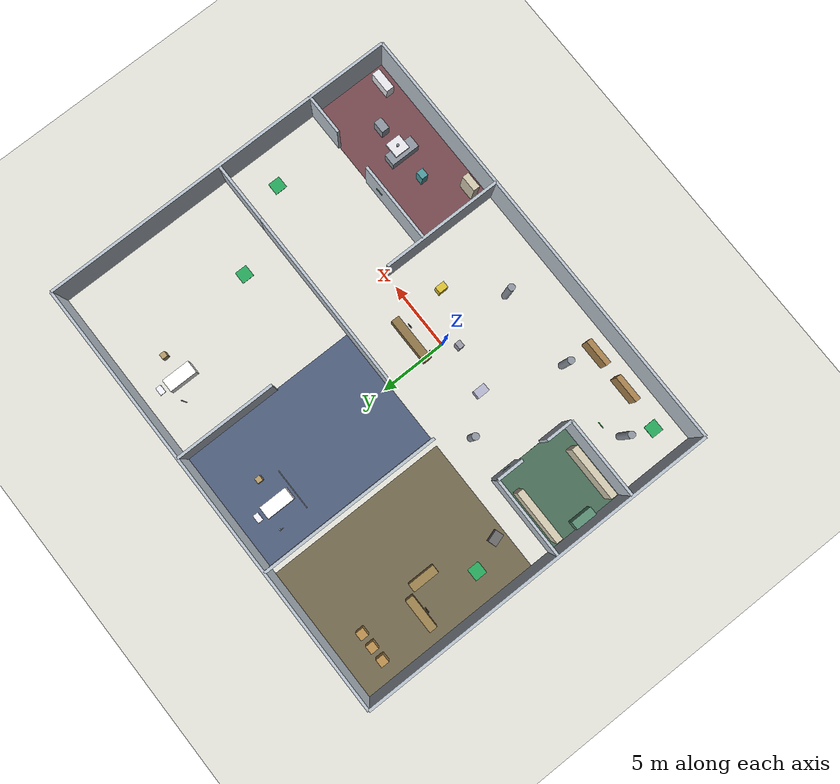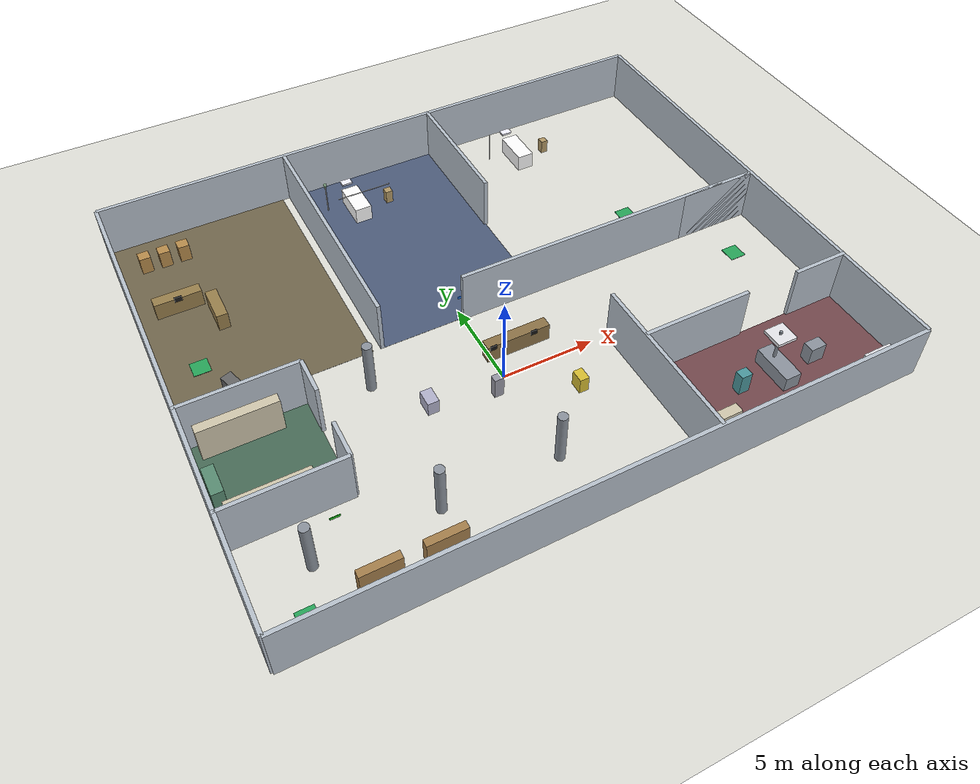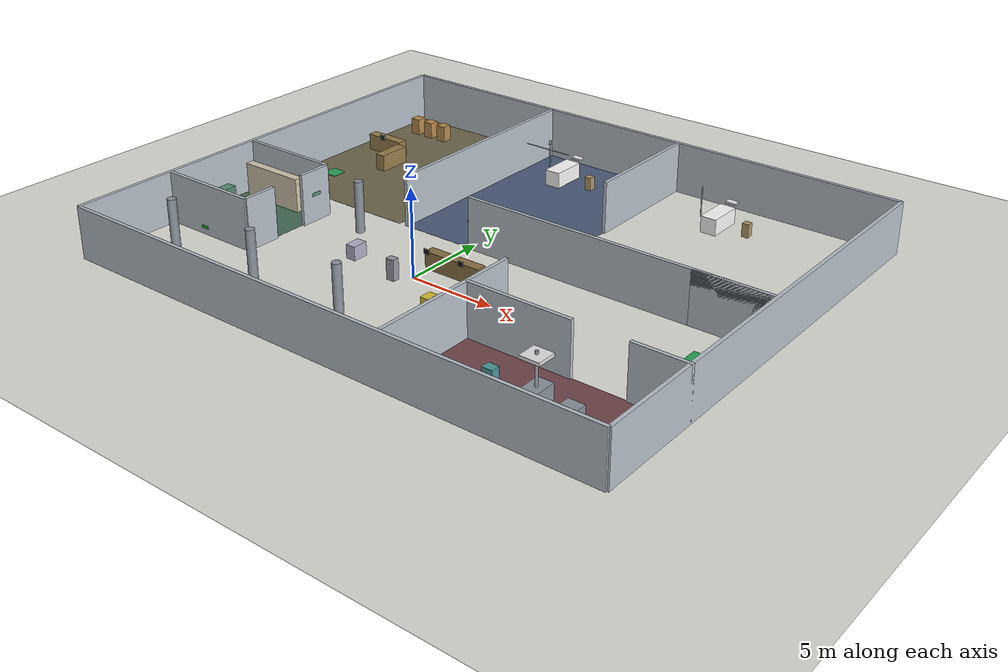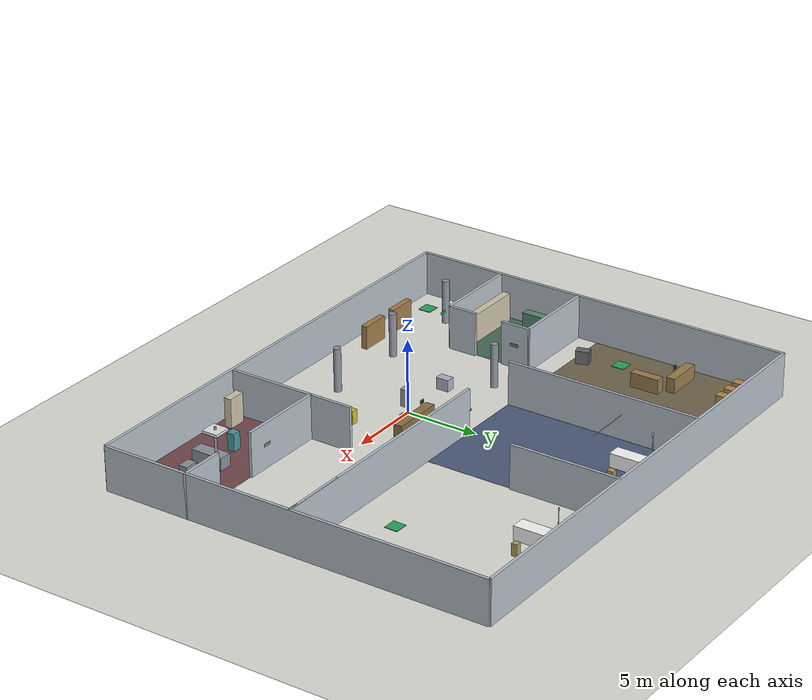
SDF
<?xml version="1.0" ?>
<sdf version="1.6">
  <world name="hospital">

    <!-- ===== PHYSICS ===== -->
    <physics name="default_physics" default="true" type="ode">
      <max_step_size>0.001</max_step_size>
      <real_time_factor>1.0</real_time_factor>
      <real_time_update_rate>1000</real_time_update_rate>
    </physics>

    <!-- ===== LIGHTING (Hospital Cool White 6000K) ===== -->
    <light name="main_light_1" type="directional">
      <pose>0 0 8 0 0 0</pose>
      <diffuse>0.95 0.97 1.0 1</diffuse>
      <specular>0.1 0.1 0.1 1</specular>
      <direction>0.0 0.0 -1.0</direction>
      <cast_shadows>false</cast_shadows>
    </light>

    <light name="corridor_light_1" type="point">
      <pose>0 0 3.8 0 0 0</pose>
      <diffuse>0.95 0.97 1.0 1</diffuse>
      <specular>0.05 0.05 0.05 1</specular>
      <attenuation><range>15</range><linear>0.1</linear><constant>0.5</constant></attenuation>
      <cast_shadows>false</cast_shadows>
    </light>

    <light name="corridor_light_2" type="point">
      <pose>12 0 3.8 0 0 0</pose>
      <diffuse>0.95 0.97 1.0 1</diffuse>
      <specular>0.05 0.05 0.05 1</specular>
      <attenuation><range>15</range><linear>0.1</linear><constant>0.5</constant></attenuation>
      <cast_shadows>false</cast_shadows>
    </light>

    <light name="reception_light" type="point">
      <pose>-12 6 3.8 0 0 0</pose>
      <diffuse>0.95 0.97 1.0 1</diffuse>
      <specular>0.05 0.05 0.05 1</specular>
      <attenuation><range>12</range><linear>0.1</linear><constant>0.5</constant></attenuation>
      <cast_shadows>false</cast_shadows>
    </light>

    <!-- ===== GROUND (Linoleum Floor) ===== -->
    <model name="ground_plane">
      <static>true</static>
      <link name="link">
        <collision name="col">
          <geometry><plane><normal>0 0 1</normal><size>70 70</size></plane></geometry>
          <surface>
            <friction>
              <ode><mu>0.8</mu><mu2>0.8</mu2></ode>
            </friction>
          </surface>
        </collision>
        <visual name="vis">
          <geometry><plane><normal>0 0 1</normal><size>70 70</size></plane></geometry>
          <material>
            <ambient>0.88 0.88 0.85 1</ambient>
            <diffuse>0.88 0.88 0.85 1</diffuse>
            <specular>0.05 0.05 0.05 1</specular>
          </material>
        </visual>
      </link>
    </model>

    <!-- ===== OUTER BOUNDARY WALLS ===== -->

    <!-- North wall (top) -->
    <model name="wall_north">
      <static>true</static><pose>1.5 18 1.5 0 0 0</pose>
      <link name="link">
        <collision name="col"><geometry><box><size>33 0.2 3</size></box></geometry></collision>
        <visual name="vis"><geometry><box><size>33 0.2 3</size></box></geometry>
          <material><ambient>0.72 0.76 0.80 1</ambient><diffuse>0.72 0.76 0.80 1</diffuse><specular>0.05 0.05 0.05 1</specular></material>
        </visual>
      </link>
    </model>

    <!-- South wall -->
    <model name="wall_south">
      <static>true</static><pose>1.5 -9 1.5 0 0 0</pose>
      <link name="link">
        <collision name="col"><geometry><box><size>33 0.2 3</size></box></geometry></collision>
        <visual name="vis"><geometry><box><size>33 0.2 3</size></box></geometry>
          <material><ambient>0.72 0.76 0.80 1</ambient><diffuse>0.72 0.76 0.80 1</diffuse><specular>0.05 0.05 0.05 1</specular></material>
        </visual>
      </link>
    </model>

    <!-- West wall -->
    <model name="wall_west">
      <static>true</static><pose>-15 4.5 1.5 0 0 0</pose>
      <link name="link">
        <collision name="col"><geometry><box><size>0.2 27 3</size></box></geometry></collision>
        <visual name="vis"><geometry><box><size>0.2 27 3</size></box></geometry>
          <material><ambient>0.72 0.76 0.80 1</ambient><diffuse>0.72 0.76 0.80 1</diffuse><specular>0.05 0.05 0.05 1</specular></material>
        </visual>
      </link>
    </model>

    <!-- East wall -->
    <model name="wall_east">
      <static>true</static><pose>18 4.5 1.5 0 0 0</pose>
      <link name="link">
        <collision name="col"><geometry><box><size>0.2 27 3</size></box></geometry></collision>
        <visual name="vis"><geometry><box><size>0.2 27 3</size></box></geometry>
          <material><ambient>0.72 0.76 0.80 1</ambient><diffuse>0.72 0.76 0.80 1</diffuse><specular>0.05 0.05 0.05 1</specular></material>
        </visual>
      </link>
    </model>

    <!-- ===== MAIN CORRIDOR WALLS (East-West, y=0 center, width=3m) ===== -->

    <!-- Corridor north wall segment east -->
    <model name="corridor_north_east">
      <static>true</static><pose>9 4.5 1.5 0 0 0</pose>
      <link name="link">
        <collision name="col"><geometry><box><size>18 0.2 3</size></box></geometry></collision>
        <visual name="vis"><geometry><box><size>18 0.2 3</size></box></geometry>
          <material><ambient>0.72 0.76 0.80 1</ambient><diffuse>0.72 0.76 0.80 1</diffuse><specular>0.05 0.05 0.05 1</specular></material>
        </visual>
      </link>
    </model>

    <!-- ===== RECEPTION AREA (x=-10 to -7, y=3 to 12) ===== -->

    <!-- Supply table -->
    <model name="supply_table">
      <static>true</static><pose>-12.75 12 0.5 0 0 0</pose>
      <link name="link">
        <collision name="col"><geometry><box><size>2.5 0.6 1.0</size></box></geometry></collision>
        <visual name="vis"><geometry><box><size>2.5 0.6 1.0</size></box></geometry>
          <material><ambient>0.6 0.5 0.3 1</ambient><diffuse>0.6 0.5 0.3 1</diffuse></material>
        </visual>
      </link>
    </model>

    <!-- Supply side panel -->
    <model name="supply_side">
      <static>true</static><pose>-11.1 10.5 0.5 0 0 0</pose>
      <link name="link">
        <collision name="col"><geometry><box><size>0.6 2.0 1.0</size></box></geometry></collision>
        <visual name="vis"><geometry><box><size>0.6 2.0 1.0</size></box></geometry>
          <material><ambient>0.6 0.5 0.3 1</ambient><diffuse>0.6 0.5 0.3 1</diffuse></material>
        </visual>
      </link>
    </model>

    <!-- Reception computer monitor -->
    <model name="reception_monitor">
      <static>true</static><pose>-12.75 11.55 1.1 0 0 0</pose>
      <link name="link">
        <collision name="col"><geometry><box><size>0.4 0.05 0.3</size></box></geometry></collision>
        <visual name="vis"><geometry><box><size>0.4 0.05 0.3</size></box></geometry>
          <material><ambient>0.1 0.1 0.1 1</ambient><diffuse>0.1 0.1 0.1 1</diffuse></material>
        </visual>
      </link>
    </model>

    <!-- Waiting chairs (3 chairs) -->
    <!-- Supply boxes near reception (3 boxes) -->
    <model name="supply_box_1">
      <static>true</static><pose>-13.5 15.75 0.5 0 0 0</pose>
      <link name="link">
        <collision name="col"><geometry><box><size>0.6 0.6 1.0</size></box></geometry></collision>
        <visual name="vis"><geometry><box><size>0.6 0.6 1.0</size></box></geometry>
          <material><ambient>0.72 0.55 0.3 1</ambient><diffuse>0.72 0.55 0.3 1</diffuse></material>
        </visual>
      </link>
    </model>

    <model name="supply_box_2">
      <static>true</static><pose>-12.45 15.75 0.5 0 0 0</pose>
      <link name="link">
        <collision name="col"><geometry><box><size>0.6 0.6 1.0</size></box></geometry></collision>
        <visual name="vis"><geometry><box><size>0.6 0.6 1.0</size></box></geometry>
          <material><ambient>0.72 0.55 0.3 1</ambient><diffuse>0.72 0.55 0.3 1</diffuse></material>
        </visual>
      </link>
    </model>

    <model name="supply_box_3">
      <static>true</static><pose>-11.4 15.75 0.5 0 0 0</pose>
      <link name="link">
        <collision name="col"><geometry><box><size>0.6 0.6 1.0</size></box></geometry></collision>
        <visual name="vis"><geometry><box><size>0.6 0.6 1.0</size></box></geometry>
          <material><ambient>0.72 0.55 0.3 1</ambient><diffuse>0.72 0.55 0.3 1</diffuse></material>
        </visual>
      </link>
    </model>

    <!-- ===== PATIENT ROOM 1 (x=-3 to 3, y=3 to 12) ===== -->
    <!-- Room 1 west wall -->
    <model name="room1_west">
      <static>true</static><pose>-4.5 11.25 1.5 0 0 0</pose>
      <link name="link">
        <collision name="col"><geometry><box><size>0.2 13.5 3</size></box></geometry></collision>
        <visual name="vis"><geometry><box><size>0.2 13.5 3</size></box></geometry>
          <material><ambient>0.72 0.76 0.80 1</ambient><diffuse>0.72 0.76 0.80 1</diffuse><specular>0.05 0.05 0.05 1</specular></material>
        </visual>
      </link>
    </model>

    <!-- Room 1 east wall (with door gap) -->
    <model name="room1_east_top">
      <static>true</static><pose>4.5 14.25 1.5 0 0 0</pose>
      <link name="link">
        <collision name="col"><geometry><box><size>0.2 7.5 3</size></box></geometry></collision>
        <visual name="vis"><geometry><box><size>0.2 7.5 3</size></box></geometry>
          <material><ambient>0.72 0.76 0.80 1</ambient><diffuse>0.72 0.76 0.80 1</diffuse><specular>0.05 0.05 0.05 1</specular></material>
        </visual>
      </link>
    </model>

    <!-- Patient Room 1 Bed -->
    <model name="bed_room1">
      <static>true</static><pose>-1.5 15 0.475 0 0 0</pose>
      <link name="link">
        <collision name="col"><geometry><box><size>0.95 2.1 0.95</size></box></geometry></collision>
        <visual name="vis"><geometry><box><size>0.95 2.1 0.95</size></box></geometry>
          <material><ambient>1.0 1.0 1.0 1</ambient><diffuse>1.0 1.0 1.0 1</diffuse></material>
        </visual>
      </link>
    </model>

    <!-- Bed pillow -->
    <model name="pillow_room1">
      <static>true</static><pose>-1.5 16.5 1.0 0 0 0</pose>
      <link name="link">
        <collision name="col"><geometry><box><size>0.6 0.4 0.1</size></box></geometry></collision>
        <visual name="vis"><geometry><box><size>0.6 0.4 0.1</size></box></geometry>
          <material><ambient>0.95 0.95 1.0 1</ambient><diffuse>0.95 0.95 1.0 1</diffuse></material>
        </visual>
      </link>
    </model>

    <!-- Bedside table room 1 -->
    <model name="bedside_table_1">
      <static>true</static><pose>0.45 15 0.4 0 0 0</pose>
      <link name="link">
        <collision name="col"><geometry><box><size>0.4 0.4 0.8</size></box></geometry></collision>
        <visual name="vis"><geometry><box><size>0.4 0.4 0.8</size></box></geometry>
          <material><ambient>0.7 0.6 0.4 1</ambient><diffuse>0.7 0.6 0.4 1</diffuse></material>
        </visual>
      </link>
    </model>

    <!-- IV Stand room 1 -->
    <model name="iv_stand_1">
      <static>true</static><pose>-3 15.75 0.9 0 0 0</pose>
      <link name="link">
        <collision name="col"><geometry><cylinder><radius>0.03</radius><length>1.8</length></cylinder></geometry></collision>
        <visual name="vis"><geometry><cylinder><radius>0.03</radius><length>1.8</length></cylinder></geometry>
          <material><ambient>0.8 0.8 0.8 1</ambient><diffuse>0.8 0.8 0.8 1</diffuse></material>
        </visual>
      </link>
    </model>

    <!-- IV Bag -->
    <model name="iv_bag_1">
      <static>true</static><pose>-3 15.75 1.85 0 0 0</pose>
      <link name="link">
        <collision name="col"><geometry><box><size>0.15 0.05 0.25</size></box></geometry></collision>
        <visual name="vis"><geometry><box><size>0.15 0.05 0.25</size></box></geometry>
          <material><ambient>0.7 0.9 0.7 0.8</ambient><diffuse>0.7 0.9 0.7 0.8</diffuse></material>
        </visual>
      </link>
    </model>

    <!-- Privacy curtain rail room 1 -->
    <model name="curtain_rail_1">
      <static>true</static><pose>-1.5 13.5 2.5 0 0 0</pose>
      <link name="link">
        <collision name="col"><geometry><cylinder><radius>0.02</radius><length>3.0</length></cylinder></geometry>
          <pose>0 0 0 0 1.571 0</pose>
        </collision>
        <visual name="vis">
          <geometry>
            <cylinder>
              <radius>0.02</radius>
              <length>3.0</length>
            </cylinder>
          </geometry>
          <pose>0 0 0 0 1.571 0</pose>
          <material>
            <ambient>0.7 0.7 0.7 1</ambient>
            <diffuse>0.7 0.7 0.7 1</diffuse>
          </material>
        </visual>
      </link>
    </model>

    <!-- ===== PATIENT ROOM 2 (x=3 to 9, y=3 to 12) ===== -->

    <!-- Patient Room 2 Bed -->
    <model name="bed_room2">
      <static>true</static><pose>9 15 0.475 0 0 0</pose>
      <link name="link">
        <collision name="col"><geometry><box><size>0.95 2.1 0.95</size></box></geometry></collision>
        <visual name="vis"><geometry><box><size>0.95 2.1 0.95</size></box></geometry>
          <material><ambient>1.0 1.0 1.0 1</ambient><diffuse>1.0 1.0 1.0 1</diffuse></material>
        </visual>
      </link>
    </model>

    <!-- Bed pillow room 2 -->
    <model name="pillow_room2">
      <static>true</static><pose>9 16.5 1.0 0 0 0</pose>
      <link name="link">
        <collision name="col"><geometry><box><size>0.6 0.4 0.1</size></box></geometry></collision>
        <visual name="vis"><geometry><box><size>0.6 0.4 0.1</size></box></geometry>
          <material><ambient>0.95 0.95 1.0 1</ambient><diffuse>0.95 0.95 1.0 1</diffuse></material>
        </visual>
      </link>
    </model>

    <!-- Bedside table room 2 -->
    <model name="bedside_table_2">
      <static>true</static><pose>10.8 15 0.4 0 0 0</pose>
      <link name="link">
        <collision name="col"><geometry><box><size>0.4 0.4 0.8</size></box></geometry></collision>
        <visual name="vis"><geometry><box><size>0.4 0.4 0.8</size></box></geometry>
          <material><ambient>0.7 0.6 0.4 1</ambient><diffuse>0.7 0.6 0.4 1</diffuse></material>
        </visual>
      </link>
    </model>

    <!-- IV Stand room 2 -->
    <model name="iv_stand_2">
      <static>true</static><pose>7.5 15.75 0.9 0 0 0</pose>
      <link name="link">
        <collision name="col"><geometry><cylinder><radius>0.03</radius><length>1.8</length></cylinder></geometry></collision>
        <visual name="vis"><geometry><cylinder><radius>0.03</radius><length>1.8</length></cylinder></geometry>
          <material><ambient>0.8 0.8 0.8 1</ambient><diffuse>0.8 0.8 0.8 1</diffuse></material>
        </visual>
      </link>
    </model>

    <!-- ===== NURSES STATION (center, x=-1 to 3, y=-1 to 3) ===== -->
    <model name="nurses_desk_main">
      <static>true</static><pose>1.5 1.5 0.5 0 0 0</pose>
      <link name="link">
        <collision name="col"><geometry><box><size>3.5 0.6 1.0</size></box></geometry></collision>
        <visual name="vis"><geometry><box><size>3.5 0.6 1.0</size></box></geometry>
          <material><ambient>0.55 0.45 0.28 1</ambient><diffuse>0.55 0.45 0.28 1</diffuse></material>
        </visual>
      </link>
    </model>

    <!-- Nurses monitor 1 -->
    <model name="nurses_monitor_1">
      <static>true</static><pose>0 1.05 1.1 0 0 0</pose>
      <link name="link">
        <collision name="col"><geometry><box><size>0.35 0.05 0.28</size></box></geometry></collision>
        <visual name="vis"><geometry><box><size>0.35 0.05 0.28</size></box></geometry>
          <material><ambient>0.08 0.08 0.08 1</ambient><diffuse>0.08 0.08 0.08 1</diffuse></material>
        </visual>
      </link>
    </model>

    <!-- Nurses monitor 2 -->
    <model name="nurses_monitor_2">
      <static>true</static><pose>2.25 1.05 1.1 0 0 0</pose>
      <link name="link">
        <collision name="col"><geometry><box><size>0.35 0.05 0.28</size></box></geometry></collision>
        <visual name="vis"><geometry><box><size>0.35 0.05 0.28</size></box></geometry>
          <material><ambient>0.08 0.08 0.08 1</ambient><diffuse>0.08 0.08 0.08 1</diffuse></material>
        </visual>
      </link>
    </model>

    <!-- Nurses filing cabinet -->
    <model name="filing_cabinet">
      <static>true</static><pose>-0.75 -0.75 0.6 0 0 0</pose>
      <link name="link">
        <collision name="col"><geometry><box><size>0.5 0.4 1.2</size></box></geometry></collision>
        <visual name="vis"><geometry><box><size>0.5 0.4 1.2</size></box></geometry>
          <material><ambient>0.6 0.6 0.65 1</ambient><diffuse>0.6 0.6 0.65 1</diffuse></material>
        </visual>
      </link>
    </model>

    <!-- ===== OPERATING THEATER (x=9 to 12, y=-6 to 3) ===== -->
    <model name="ot_north_wall">
      <static>true</static><pose>15.75 4.5 1.5 0 0 0</pose>
      <link name="link">
        <collision name="col"><geometry><box><size>4.5 0.2 3</size></box></geometry></collision>
        <visual name="vis"><geometry><box><size>4.5 0.2 3</size></box></geometry>
          <material><ambient>0.72 0.76 0.80 1</ambient><diffuse>0.72 0.76 0.80 1</diffuse><specular>0.05 0.05 0.05 1</specular></material>
        </visual>
      </link>
    </model>

    <!-- ===== STORAGE / CHARGING BAY (x=-10 to -4, y=-6 to -3) ===== -->

    <!-- Storage shelf 1 -->
    <model name="shelf_1">
      <static>true</static><pose>-9.75 -7.5 0.8 0 0 0</pose>
      <link name="link">
        <collision name="col"><geometry><box><size>2.0 0.4 1.6</size></box></geometry></collision>
        <visual name="vis"><geometry><box><size>2.0 0.4 1.6</size></box></geometry>
          <material><ambient>0.65 0.5 0.3 1</ambient><diffuse>0.65 0.5 0.3 1</diffuse></material>
        </visual>
      </link>
    </model>

    <!-- Storage shelf 2 -->
    <model name="shelf_2">
      <static>true</static><pose>-6.75 -7.5 0.8 0 0 0</pose>
      <link name="link">
        <collision name="col"><geometry><box><size>2.0 0.4 1.6</size></box></geometry></collision>
        <visual name="vis"><geometry><box><size>2.0 0.4 1.6</size></box></geometry>
          <material><ambient>0.65 0.5 0.3 1</ambient><diffuse>0.65 0.5 0.3 1</diffuse></material>
        </visual>
      </link>
    </model>

    <!-- ===== HALLWAY OBSTACLES (clutter) ===== -->

    <!-- Laundry cart -->
    <model name="laundry_cart">
      <static>true</static><pose>-4.0 0.0 0.4 0 0 0</pose>
      <link name="link">
        <collision name="col"><geometry><box><size>0.6 0.9 0.8</size></box></geometry></collision>
        <visual name="vis"><geometry><box><size>0.6 0.9 0.8</size></box></geometry>
          <material><ambient>0.7 0.7 0.8 1</ambient><diffuse>0.7 0.7 0.8 1</diffuse></material>
        </visual>
      </link>
    </model>

    <!-- Food trolley -->
    <model name="food_trolley">
      <static>true</static><pose>3 -2.25 0.45 0 0 0</pose>
      <link name="link">
        <collision name="col"><geometry><box><size>0.5 0.7 0.9</size></box></geometry></collision>
        <visual name="vis"><geometry><box><size>0.5 0.7 0.9</size></box></geometry>
          <material><ambient>0.85 0.75 0.2 1</ambient><diffuse>0.85 0.75 0.2 1</diffuse></material>
        </visual>
      </link>
    </model>

    <!-- Medicine box on floor -->

    <!-- Wheelchair parked -->
    <model name="wheelchair">
      <static>true</static><pose>-12 5.25 0.45 0 0 0.3</pose>
      <link name="link">
        <collision name="col"><geometry><box><size>0.6 0.9 0.9</size></box></geometry></collision>
        <visual name="vis"><geometry><box><size>0.6 0.9 0.9</size></box></geometry>
          <material><ambient>0.4 0.4 0.4 1</ambient><diffuse>0.4 0.4 0.4 1</diffuse></material>
        </visual>
      </link>
    </model>

    <!-- ===== SIGNAGE (at 1.5m height) ===== -->

    <!-- Room 1 sign -->
    <model name="sign_room1">
      <static>true</static><pose>0 4.575 1.5 0 0 0</pose>
      <link name="link">
        <collision name="col"><geometry><box><size>0.4 0.02 0.15</size></box></geometry></collision>
        <visual name="vis"><geometry><box><size>0.4 0.02 0.15</size></box></geometry>
          <material><ambient>0.1 0.4 0.8 1</ambient><diffuse>0.1 0.4 0.8 1</diffuse></material>
        </visual>
      </link>
    </model>

    <!-- Room 2 sign -->
    <model name="sign_room2">
      <static>true</static><pose>9 4.575 1.5 0 0 0</pose>
      <link name="link">
        <collision name="col"><geometry><box><size>0.4 0.02 0.15</size></box></geometry></collision>
        <visual name="vis"><geometry><box><size>0.4 0.02 0.15</size></box></geometry>
          <material><ambient>0.1 0.4 0.8 1</ambient><diffuse>0.1 0.4 0.8 1</diffuse></material>
        </visual>
      </link>
    </model>

    <!-- Charging bay sign -->
    <model name="sign_charging">
      <static>true</static><pose>-10.5 -4.575 1.5 0 0 0</pose>
      <link name="link">
        <collision name="col"><geometry><box><size>0.5 0.02 0.15</size></box></geometry></collision>
        <visual name="vis"><geometry><box><size>0.5 0.02 0.15</size></box></geometry>
          <material><ambient>0.1 0.7 0.1 1</ambient><diffuse>0.1 0.7 0.1 1</diffuse></material>
        </visual>
      </link>
    </model>

    <!-- ===== GFORCE EXTENSIONS (4-rover centralised fleet) ===== -->
    <model name="sw_wall_west">
      <static>true</static><pose>6.0 -4.5 1.5 0 0 0</pose>
      <link name="link">
        <collision name="col"><geometry><box><size>0.2 9.0 3.0</size></box></geometry></collision>
        <visual name="vis"><geometry><box><size>0.2 9.0 3.0</size></box></geometry>
          <material><ambient>0.72 0.76 0.8 1</ambient><diffuse>0.72 0.76 0.8 1</diffuse><specular>0.05 0.05 0.05 1</specular></material>
        </visual>
      </link>
    </model>
    <model name="sw_wall_div_w">
      <static>true</static><pose>9.0 -3.0 1.5 0 0 0</pose>
      <link name="link">
        <collision name="col"><geometry><box><size>6.0 0.2 3.0</size></box></geometry></collision>
        <visual name="vis"><geometry><box><size>6.0 0.2 3.0</size></box></geometry>
          <material><ambient>0.72 0.76 0.8 1</ambient><diffuse>0.72 0.76 0.8 1</diffuse><specular>0.05 0.05 0.05 1</specular></material>
        </visual>
      </link>
    </model>
    <model name="sw_wall_div_e">
      <static>true</static><pose>16.55 -3.0 1.5 0 0 0</pose>
      <link name="link">
        <collision name="col"><geometry><box><size>3.1 0.2 3.0</size></box></geometry></collision>
        <visual name="vis"><geometry><box><size>3.1 0.2 3.0</size></box></geometry>
          <material><ambient>0.72 0.76 0.8 1</ambient><diffuse>0.72 0.76 0.8 1</diffuse><specular>0.05 0.05 0.05 1</specular></material>
        </visual>
      </link>
    </model>
    <model name="ot_table">
      <static>true</static><pose>12.0 -6.0 0.425 0 0 0</pose>
      <link name="link">
        <collision name="col"><geometry><box><size>0.9 2.2 0.85</size></box></geometry></collision>
        <visual name="vis"><geometry><box><size>0.9 2.2 0.85</size></box></geometry>
          <material><ambient>0.55 0.58 0.62 1</ambient><diffuse>0.55 0.58 0.62 1</diffuse><specular>0.05 0.05 0.05 1</specular></material>
        </visual>
      </link>
    </model>
    <model name="ot_lamp_head">
      <static>true</static><pose>12.0 -5.6 2.35 0 0 0</pose>
      <link name="link">
        <collision name="col"><geometry><box><size>1.1 1.1 0.18</size></box></geometry></collision>
        <visual name="vis"><geometry><box><size>1.1 1.1 0.18</size></box></geometry>
          <material><ambient>0.9 0.9 0.92 1</ambient><diffuse>0.9 0.9 0.92 1</diffuse><specular>0.05 0.05 0.05 1</specular></material>
        </visual>
      </link>
    </model>
    <model name="anesthesia_cart">
      <static>true</static><pose>9.8 -6.0 0.6 0 0 0</pose>
      <link name="link">
        <collision name="col"><geometry><box><size>0.6 0.5 1.2</size></box></geometry></collision>
        <visual name="vis"><geometry><box><size>0.6 0.5 1.2</size></box></geometry>
          <material><ambient>0.3 0.6 0.62 1</ambient><diffuse>0.3 0.6 0.62 1</diffuse><specular>0.05 0.05 0.05 1</specular></material>
        </visual>
      </link>
    </model>
    <model name="instrument_tray">
      <static>true</static><pose>14.2 -6.0 0.5 0 0 0</pose>
      <link name="link">
        <collision name="col"><geometry><box><size>0.9 0.6 1.0</size></box></geometry></collision>
        <visual name="vis"><geometry><box><size>0.9 0.6 1.0</size></box></geometry>
          <material><ambient>0.55 0.58 0.62 1</ambient><diffuse>0.55 0.58 0.62 1</diffuse><specular>0.05 0.05 0.05 1</specular></material>
        </visual>
      </link>
    </model>
    <model name="scrub_sink">
      <static>true</static><pose>16.6 -8.0 0.525 0 0 0</pose>
      <link name="link">
        <collision name="col"><geometry><box><size>1.6 0.6 1.05</size></box></geometry></collision>
        <visual name="vis"><geometry><box><size>1.6 0.6 1.05</size></box></geometry>
          <material><ambient>0.9 0.9 0.92 1</ambient><diffuse>0.9 0.9 0.92 1</diffuse><specular>0.05 0.05 0.05 1</specular></material>
        </visual>
      </link>
    </model>
    <model name="sterile_cabinet">
      <static>true</static><pose>7.2 -8.0 1.0 0 0 0</pose>
      <link name="link">
        <collision name="col"><geometry><box><size>1.2 0.5 2.0</size></box></geometry></collision>
        <visual name="vis"><geometry><box><size>1.2 0.5 2.0</size></box></geometry>
          <material><ambient>0.82 0.78 0.68 1</ambient><diffuse>0.82 0.78 0.68 1</diffuse><specular>0.05 0.05 0.05 1</specular></material>
        </visual>
      </link>
    </model>
    <model name="ph_wall_east_s">
      <static>true</static><pose>-9.0 -2.0 1.5 0 0 0</pose>
      <link name="link">
        <collision name="col"><geometry><box><size>0.2 2.0 3.0</size></box></geometry></collision>
        <visual name="vis"><geometry><box><size>0.2 2.0 3.0</size></box></geometry>
          <material><ambient>0.72 0.76 0.8 1</ambient><diffuse>0.72 0.76 0.8 1</diffuse><specular>0.05 0.05 0.05 1</specular></material>
        </visual>
      </link>
    </model>
    <model name="ph_wall_east_n">
      <static>true</static><pose>-9.0 2.0 1.5 0 0 0</pose>
      <link name="link">
        <collision name="col"><geometry><box><size>0.2 2.0 3.0</size></box></geometry></collision>
        <visual name="vis"><geometry><box><size>0.2 2.0 3.0</size></box></geometry>
          <material><ambient>0.72 0.76 0.8 1</ambient><diffuse>0.72 0.76 0.8 1</diffuse><specular>0.05 0.05 0.05 1</specular></material>
        </visual>
      </link>
    </model>
    <model name="ph_wall_south">
      <static>true</static><pose>-12.05 -3.0 1.5 0 0 0</pose>
      <link name="link">
        <collision name="col"><geometry><box><size>6.1 0.2 3.0</size></box></geometry></collision>
        <visual name="vis"><geometry><box><size>6.1 0.2 3.0</size></box></geometry>
          <material><ambient>0.72 0.76 0.8 1</ambient><diffuse>0.72 0.76 0.8 1</diffuse><specular>0.05 0.05 0.05 1</specular></material>
        </visual>
      </link>
    </model>
    <model name="ph_wall_north">
      <static>true</static><pose>-12.05 3.0 1.5 0 0 0</pose>
      <link name="link">
        <collision name="col"><geometry><box><size>6.1 0.2 3.0</size></box></geometry></collision>
        <visual name="vis"><geometry><box><size>6.1 0.2 3.0</size></box></geometry>
          <material><ambient>0.72 0.76 0.8 1</ambient><diffuse>0.72 0.76 0.8 1</diffuse><specular>0.05 0.05 0.05 1</specular></material>
        </visual>
      </link>
    </model>
    <model name="ph_shelf_a">
      <static>true</static><pose>-12.5 2.25 1.0 0 0 0</pose>
      <link name="link">
        <collision name="col"><geometry><box><size>4.0 0.5 2.0</size></box></geometry></collision>
        <visual name="vis"><geometry><box><size>4.0 0.5 2.0</size></box></geometry>
          <material><ambient>0.82 0.78 0.68 1</ambient><diffuse>0.82 0.78 0.68 1</diffuse><specular>0.05 0.05 0.05 1</specular></material>
        </visual>
      </link>
    </model>
    <model name="ph_shelf_b">
      <static>true</static><pose>-12.5 -2.25 1.0 0 0 0</pose>
      <link name="link">
        <collision name="col"><geometry><box><size>4.0 0.5 2.0</size></box></geometry></collision>
        <visual name="vis"><geometry><box><size>4.0 0.5 2.0</size></box></geometry>
          <material><ambient>0.82 0.78 0.68 1</ambient><diffuse>0.82 0.78 0.68 1</diffuse><specular>0.05 0.05 0.05 1</specular></material>
        </visual>
      </link>
    </model>
    <model name="ph_counter">
      <static>true</static><pose>-14.5 0.0 0.525 0 0 0</pose>
      <link name="link">
        <collision name="col"><geometry><box><size>0.6 1.6 1.05</size></box></geometry></collision>
        <visual name="vis"><geometry><box><size>0.6 1.6 1.05</size></box></geometry>
          <material><ambient>0.35 0.55 0.45 1</ambient><diffuse>0.35 0.55 0.45 1</diffuse><specular>0.05 0.05 0.05 1</specular></material>
        </visual>
      </link>
    </model>
    <model name="sign_surgical">
      <static>true</static><pose>10.5 -2.88 1.6 0 0 0</pose>
      <link name="link">
        <collision name="col"><geometry><box><size>0.6 0.02 0.2</size></box></geometry></collision>
        <visual name="vis"><geometry><box><size>0.6 0.02 0.2</size></box></geometry>
          <material><ambient>0.35 0.55 0.45 1</ambient><diffuse>0.35 0.55 0.45 1</diffuse><specular>0.05 0.05 0.05 1</specular></material>
        </visual>
      </link>
    </model>
    <model name="sign_pharmacy">
      <static>true</static><pose>-8.88 2.0 1.6 0 0 0</pose>
      <link name="link">
        <collision name="col"><geometry><box><size>0.02 0.6 0.2</size></box></geometry></collision>
        <visual name="vis"><geometry><box><size>0.02 0.6 0.2</size></box></geometry>
          <material><ambient>0.35 0.55 0.45 1</ambient><diffuse>0.35 0.55 0.45 1</diffuse><specular>0.05 0.05 0.05 1</specular></material>
        </visual>
      </link>
    </model>
    <model name="dock_alpha">
      <static>true</static><pose>-13.0 -7.5 0.02 0 0 0</pose>
      <link name="link">
        <collision name="col"><geometry><box><size>0.9 0.9 0.04</size></box></geometry></collision>
        <visual name="vis"><geometry><box><size>0.9 0.9 0.04</size></box></geometry>
          <material><ambient>0.15 0.65 0.35 1</ambient><diffuse>0.15 0.65 0.35 1</diffuse><specular>0.05 0.05 0.05 1</specular></material>
        </visual>
      </link>
    </model>
    <model name="dock_bravo">
      <static>true</static><pose>15.5 2.0 0.02 0 0 0</pose>
      <link name="link">
        <collision name="col"><geometry><box><size>0.9 0.9 0.04</size></box></geometry></collision>
        <visual name="vis"><geometry><box><size>0.9 0.9 0.04</size></box></geometry>
          <material><ambient>0.15 0.65 0.35 1</ambient><diffuse>0.15 0.65 0.35 1</diffuse><specular>0.05 0.05 0.05 1</specular></material>
        </visual>
      </link>
    </model>
    <model name="dock_charlie">
      <static>true</static><pose>-13.0 7.5 0.02 0 0 0</pose>
      <link name="link">
        <collision name="col"><geometry><box><size>0.9 0.9 0.04</size></box></geometry></collision>
        <visual name="vis"><geometry><box><size>0.9 0.9 0.04</size></box></geometry>
          <material><ambient>0.15 0.65 0.35 1</ambient><diffuse>0.15 0.65 0.35 1</diffuse><specular>0.05 0.05 0.05 1</specular></material>
        </visual>
      </link>
    </model>
    <model name="dock_delta">
      <static>true</static><pose>12.0 7.5 0.02 0 0 0</pose>
      <link name="link">
        <collision name="col"><geometry><box><size>0.9 0.9 0.04</size></box></geometry></collision>
        <visual name="vis"><geometry><box><size>0.9 0.9 0.04</size></box></geometry>
          <material><ambient>0.15 0.65 0.35 1</ambient><diffuse>0.15 0.65 0.35 1</diffuse><specular>0.05 0.05 0.05 1</specular></material>
        </visual>
      </link>
    </model>
    <model name="column_1">
      <static>true</static><pose>-12.0 -5.4 1.5 0 0 0</pose>
      <link name="link">
        <collision name="col"><geometry><cylinder><radius>0.25</radius><length>3.0</length></cylinder></geometry></collision>
        <visual name="vis"><geometry><cylinder><radius>0.25</radius><length>3.0</length></cylinder></geometry>
          <material><ambient>0.55 0.58 0.62 1</ambient><diffuse>0.55 0.58 0.62 1</diffuse><specular>0.05 0.05 0.05 1</specular></material>
        </visual>
      </link>
    </model>
    <model name="column_2">
      <static>true</static><pose>-6.0 -5.4 1.5 0 0 0</pose>
      <link name="link">
        <collision name="col"><geometry><cylinder><radius>0.25</radius><length>3.0</length></cylinder></geometry></collision>
        <visual name="vis"><geometry><cylinder><radius>0.25</radius><length>3.0</length></cylinder></geometry>
          <material><ambient>0.55 0.58 0.62 1</ambient><diffuse>0.55 0.58 0.62 1</diffuse><specular>0.05 0.05 0.05 1</specular></material>
        </visual>
      </link>
    </model>
    <model name="column_3">
      <static>true</static><pose>0.0 -5.4 1.5 0 0 0</pose>
      <link name="link">
        <collision name="col"><geometry><cylinder><radius>0.25</radius><length>3.0</length></cylinder></geometry></collision>
        <visual name="vis"><geometry><cylinder><radius>0.25</radius><length>3.0</length></cylinder></geometry>
          <material><ambient>0.55 0.58 0.62 1</ambient><diffuse>0.55 0.58 0.62 1</diffuse><specular>0.05 0.05 0.05 1</specular></material>
        </visual>
      </link>
    </model>
    <model name="column_4">
      <static>true</static><pose>-6.0 2.4 1.5 0 0 0</pose>
      <link name="link">
        <collision name="col"><geometry><cylinder><radius>0.25</radius><length>3.0</length></cylinder></geometry></collision>
        <visual name="vis"><geometry><cylinder><radius>0.25</radius><length>3.0</length></cylinder></geometry>
          <material><ambient>0.55 0.58 0.62 1</ambient><diffuse>0.55 0.58 0.62 1</diffuse><specular>0.05 0.05 0.05 1</specular></material>
        </visual>
      </link>
    </model>
    <model name="ot_lamp_post">
      <static>true</static><pose>12.0 -5.6 1.3 0 0 0</pose>
      <link name="link">
        <collision name="col"><geometry><cylinder><radius>0.08</radius><length>2.6</length></cylinder></geometry></collision>
        <visual name="vis"><geometry><cylinder><radius>0.08</radius><length>2.6</length></cylinder></geometry>
          <material><ambient>0.55 0.58 0.62 1</ambient><diffuse>0.55 0.58 0.62 1</diffuse><specular>0.05 0.05 0.05 1</specular></material>
        </visual>
      </link>
    </model>
    <model name="zone_surgical">
      <static>true</static><pose>12.0 -6.0 0.005 0 0 0</pose>
      <link name="link">
        <visual name="vis"><geometry><box><size>12.0 6.0 0.01</size></box></geometry>
          <material><ambient>0.45 0.28 0.3 1</ambient><diffuse>0.45 0.28 0.3 1</diffuse><specular>0.05 0.05 0.05 1</specular></material>
        </visual>
      </link>
    </model>
    <model name="zone_pharmacy">
      <static>true</static><pose>-12.05 0.0 0.005 0 0 0</pose>
      <link name="link">
        <visual name="vis"><geometry><box><size>6.0 6.0 0.01</size></box></geometry>
          <material><ambient>0.28 0.42 0.34 1</ambient><diffuse>0.28 0.42 0.34 1</diffuse><specular>0.05 0.05 0.05 1</specular></material>
        </visual>
      </link>
    </model>
    <model name="zone_ward_a">
      <static>true</static><pose>0.0 11.25 0.005 0 0 0</pose>
      <link name="link">
        <visual name="vis"><geometry><box><size>9.0 13.5 0.01</size></box></geometry>
          <material><ambient>0.3 0.36 0.48 1</ambient><diffuse>0.3 0.36 0.48 1</diffuse><specular>0.05 0.05 0.05 1</specular></material>
        </visual>
      </link>
    </model>
    <model name="zone_supply">
      <static>true</static><pose>-10.0 11.25 0.005 0 0 0</pose>
      <link name="link">
        <visual name="vis"><geometry><box><size>10.0 13.5 0.01</size></box></geometry>
          <material><ambient>0.44 0.4 0.3 1</ambient><diffuse>0.44 0.4 0.3 1</diffuse><specular>0.05 0.05 0.05 1</specular></material>
        </visual>
      </link>
    </model>

  </world>
</sdf>
